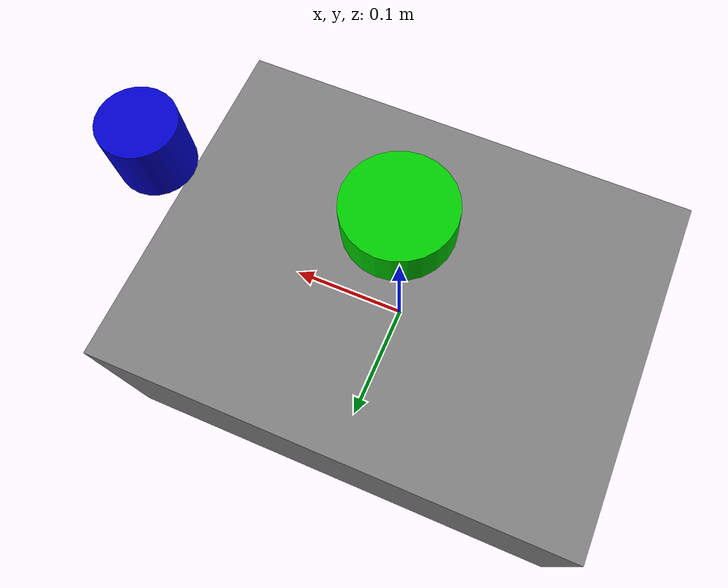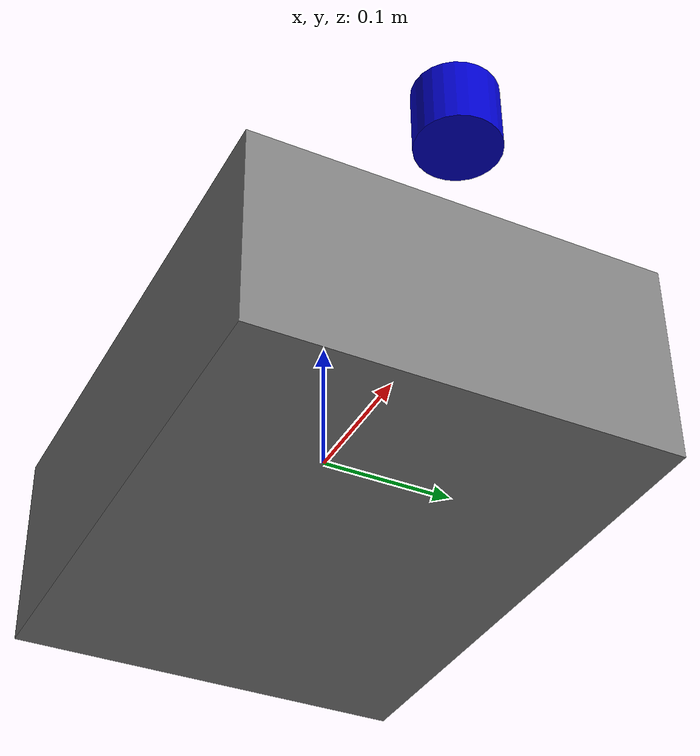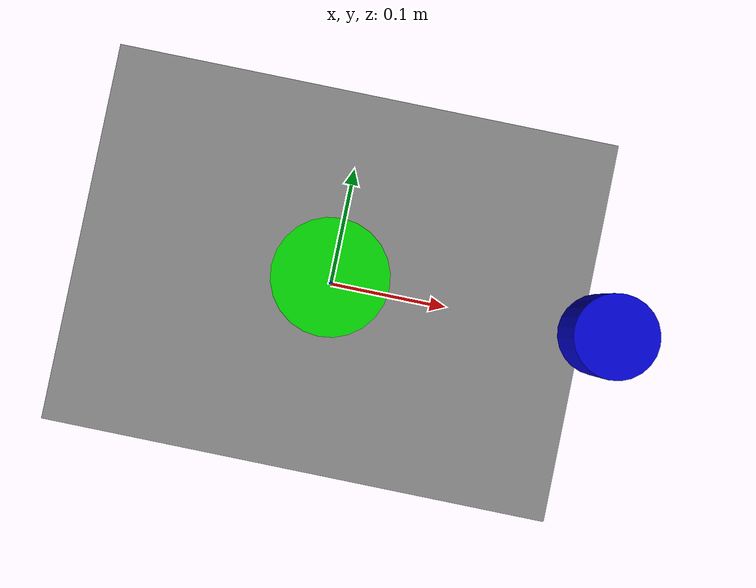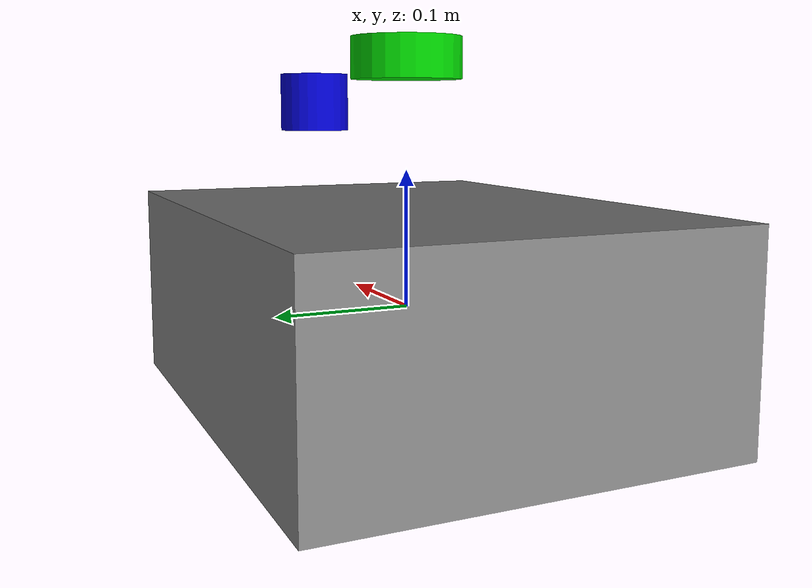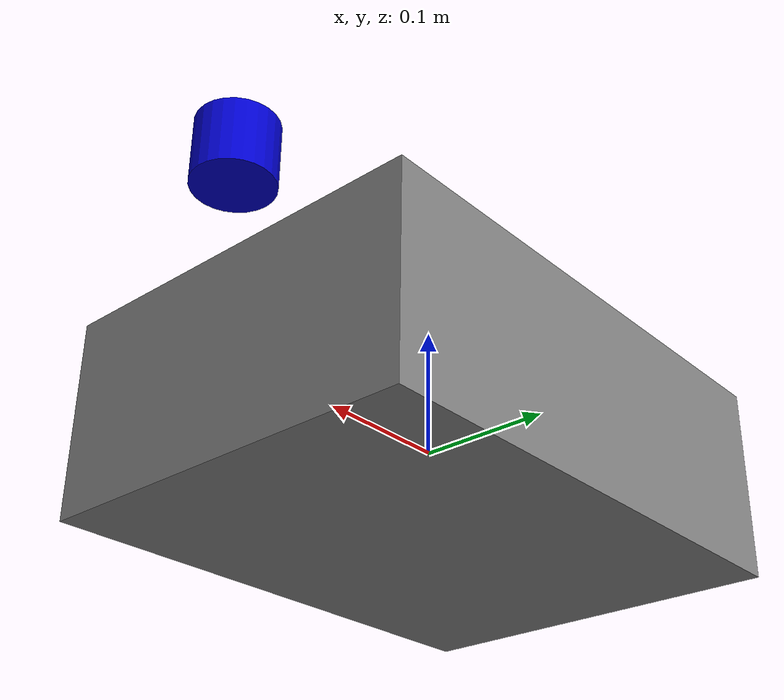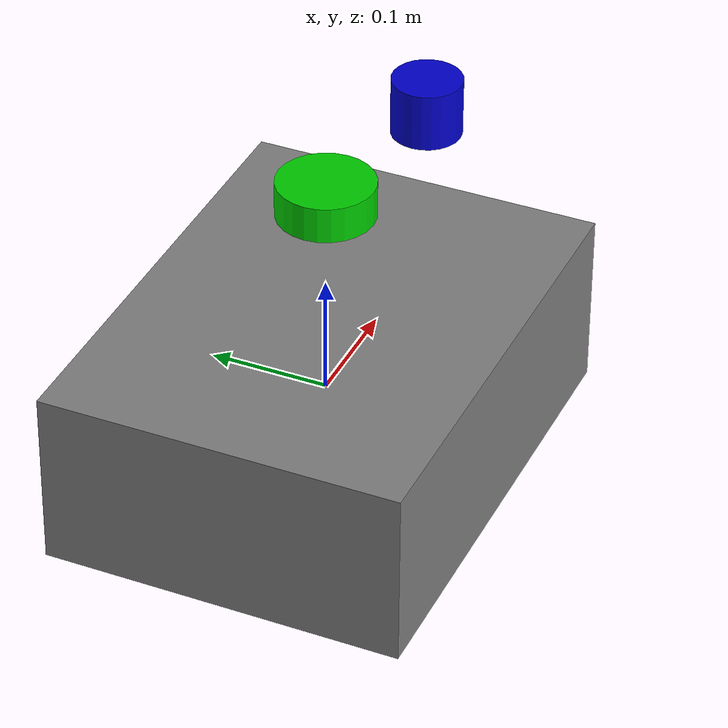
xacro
<?xml version="1.0"?>

<robot xmlns:xacro="http://www.ros.org/wiki/xacro" name="sentinel_robot">

    <link name="base_link">
        <visual>
            <geometry>
                <box size="0.4 0.3 0.15"/>
            </geometry>
            <material name="gray">
                <color rgba="0.5 0.5 0.5 1"/>
            </material>
        </visual>
    </link>

    <link name="camera_link">
        <visual>
            <geometry>
                <cylinder radius="0.03" length="0.05"/>
            </geometry>
            <material name="blue">
                <color rgba="0 0 0.8 1"/>
            </material>
        </visual>
    </link>

    <link name="lidar_link">
        <visual>
            <geometry>
                <cylinder radius="0.04" length="0.03"/>
            </geometry>
            <material name="green">
                <color rgba="0 0.8 0 1"/>
            </material>
        </visual>
    </link>

    <joint name="camera_joint" type="fixed">
        <parent link="base_link"/>
        <child link="camera_link"/>
        <origin xyz="0.2 0 0.15" rpy="0 0 0"/>
    </joint>

    <joint name="lidar_joint" type="fixed">
        <parent link="base_link"/>
        <child link="lidar_link"/>
        <origin xyz="0 0 0.18" rpy="0 0 0"/>
    </joint>

</robot>
